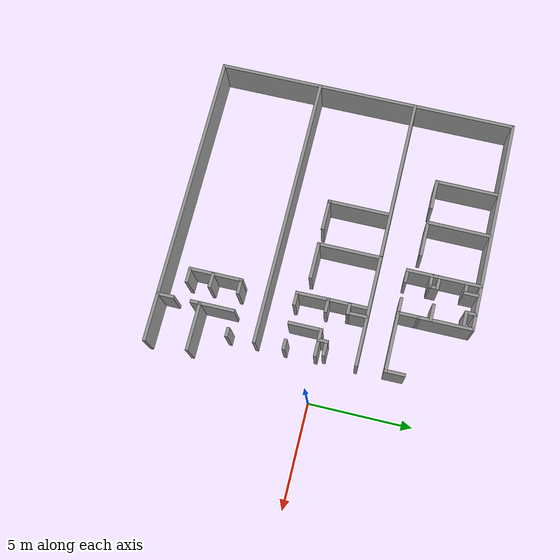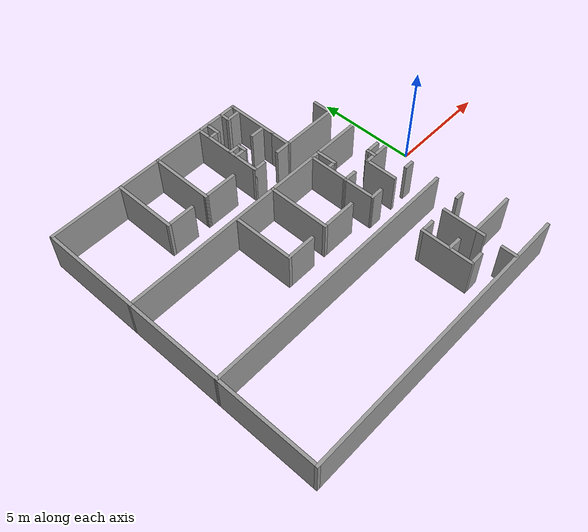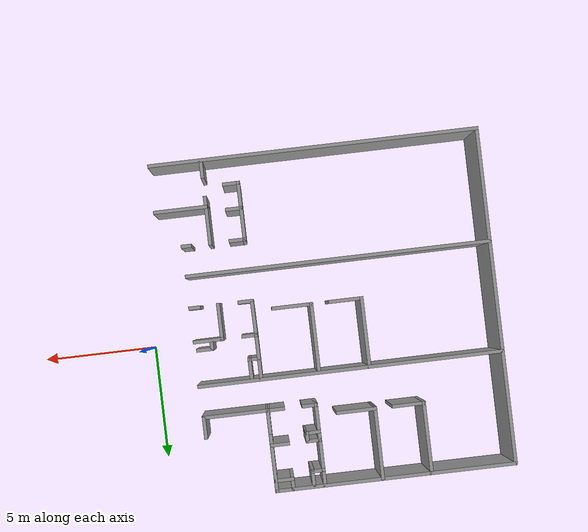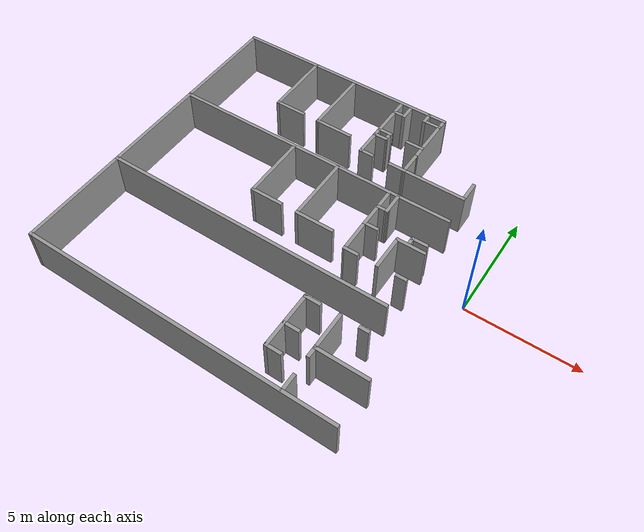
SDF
<sdf version="1.7">
 <model name="HQ">
  <pose>-0.041318 -0.56538 0 0 -0 0</pose>
  <link name="Wall_1">
   <collision name="Wall_1_Collision">
    <geometry><box><size>10.3981 0.15 2.0</size></box></geometry>
    <pose>0 0 1.25 0 -0 0</pose>
   </collision>
   <visual name="Wall_1_Visual">
    <pose>0 0 1.25 0 -0 0</pose>
    <geometry><box><size>10.3981 0.15 2.0</size></box></geometry>
    <material>
     <script><uri>file://media/materials/scripts/gazebo.material</uri><name>Gazebo/Grey</name></script>
     <ambient>1 1 1 1</ambient>
    </material>
    <meta><layer>0</layer></meta>
   </visual>
   <pose>-9.81185 7.21089 0 0 -0 0.000157</pose>
  </link>
  <link name="Wall_100">
   <collision name="Wall_100_Collision">
    <geometry><box><size>0.657 0.15 2.0</size></box></geometry>
    <pose>0 0 1.25 0 -0 0</pose>
   </collision>
   <visual name="Wall_100_Visual">
    <pose>0 0 1.25 0 -0 0</pose>
    <geometry><box><size>0.657 0.15 2.0</size></box></geometry>
    <material>
     <script><uri>file://media/materials/scripts/gazebo.material</uri><name>Gazebo/Grey</name></script>
     <ambient>1 1 1 1</ambient>
    </material>
    <meta><layer>0</layer></meta>
   </visual>
   <pose>-6.48912 5.25147 0 0 -0 3.14159</pose>
  </link>
  <link name="Wall_102">
   <collision name="Wall_102_Collision">
    <geometry><box><size>0.5 0.15 2.0</size></box></geometry>
    <pose>0 0 1.25 0 -0 0</pose>
   </collision>
   <visual name="Wall_102_Visual">
    <pose>0 0 1.25 0 -0 0</pose>
    <geometry><box><size>0.5 0.15 2.0</size></box></geometry>
    <material>
     <script><uri>file://media/materials/scripts/gazebo.material</uri><name>Gazebo/Grey</name></script>
     <ambient>1 1 1 1</ambient>
    </material>
    <meta><layer>0</layer></meta>
   </visual>
   <pose>-6.23562 5.07647 0 0 -0 -1.5708</pose>
  </link>
  <link name="Wall_103">
   <collision name="Wall_103_Collision">
    <geometry><box><size>0.668524 0.15 2.0</size></box></geometry>
    <pose>0 0 1.25 0 -0 0</pose>
   </collision>
   <visual name="Wall_103_Visual">
    <pose>0 0 1.25 0 -0 0</pose>
    <geometry><box><size>0.668524 0.15 2.0</size></box></geometry>
    <material>
     <script><uri>file://media/materials/scripts/gazebo.material</uri><name>Gazebo/Grey</name></script>
     <ambient>1 1 1 1</ambient>
    </material>
    <meta><layer>0</layer></meta>
   </visual>
   <pose>-6.49487 4.89822 0 0 -0 -3.12906</pose>
  </link>
  <link name="Wall_105">
   <collision name="Wall_105_Collision">
    <geometry><box><size>0.61 0.15 2.0</size></box></geometry>
    <pose>0 0 1.25 0 -0 0</pose>
   </collision>
   <visual name="Wall_105_Visual">
    <pose>0 0 1.25 0 -0 0</pose>
    <geometry><box><size>0.61 0.15 2.0</size></box></geometry>
    <material>
     <script><uri>file://media/materials/scripts/gazebo.material</uri><name>Gazebo/Grey</name></script>
     <ambient>1 1 1 1</ambient>
    </material>
    <meta><layer>0</layer></meta>
   </visual>
   <pose>-6.52412 6.55097 0 0 -0 0</pose>
  </link>
  <link name="Wall_106">
   <collision name="Wall_106_Collision">
    <geometry><box><size>0.725115 0.15 2.0</size></box></geometry>
    <pose>0 0 1.25 0 -0 0</pose>
   </collision>
   <visual name="Wall_106_Visual">
    <pose>0 0 1.25 0 -0 0</pose>
    <geometry><box><size>0.725115 0.15 2.0</size></box></geometry>
    <material>
     <script><uri>file://media/materials/scripts/gazebo.material</uri><name>Gazebo/Grey</name></script>
     <ambient>1 1 1 1</ambient>
    </material>
    <meta><layer>0</layer></meta>
   </visual>
   <pose>-6.29412 6.83847 0 0 -0 1.5708</pose>
  </link>
  <link name="Wall_108">
   <collision name="Wall_108_Collision">
    <geometry><box><size>3.14002 0.15 2.0</size></box></geometry>
    <pose>0 0 1.25 0 -0 0</pose>
   </collision>
   <visual name="Wall_108_Visual">
    <pose>0 0 1.25 0 -0 0</pose>
    <geometry><box><size>3.14002 0.15 2.0</size></box></geometry>
    <material>
     <script><uri>file://media/materials/scripts/gazebo.material</uri><name>Gazebo/Grey</name></script>
     <ambient>1 1 1 1</ambient>
    </material>
    <meta><layer>0</layer></meta>
   </visual>
   <pose>-9.25537 5.68847 0 0 -0 -1.57464</pose>
  </link>
  <link name="Wall_109">
   <collision name="Wall_109_Collision">
    <geometry><box><size>1.75 0.15 2.0</size></box></geometry>
    <pose>0 0 1.25 0 -0 0</pose>
   </collision>
   <visual name="Wall_109_Visual">
    <pose>0 0 1.25 0 -0 0</pose>
    <geometry><box><size>1.75 0.15 2.0</size></box></geometry>
    <material>
     <script><uri>file://media/materials/scripts/gazebo.material</uri><name>Gazebo/Grey</name></script>
     <ambient>1 1 1 1</ambient>
    </material>
    <meta><layer>0</layer></meta>
   </visual>
   <pose>-8.46112 4.19347 0 0 -0 0</pose>
  </link>
  <link name="Wall_113">
   <collision name="Wall_113_Collision">
    <geometry><box><size>1.43805 0.15 2.0</size></box></geometry>
    <pose>0 0 1.25 0 -0 0</pose>
   </collision>
   <visual name="Wall_113_Visual">
    <pose>0 0 1.25 0 -0 0</pose>
    <geometry><box><size>1.43805 0.15 2.0</size></box></geometry>
    <material>
     <script><uri>file://media/materials/scripts/gazebo.material</uri><name>Gazebo/Grey</name></script>
     <ambient>1 1 1 1</ambient>
    </material>
    <meta><layer>0</layer></meta>
   </visual>
   <pose>-10.7101 4.19347 0 0 -0 3.14159</pose>
  </link>
  <link name="Wall_114">
   <collision name="Wall_114_Collision">
    <geometry><box><size>3.1515 0.15 2.0</size></box></geometry>
    <pose>0 0 1.25 0 -0 0</pose>
   </collision>
   <visual name="Wall_114_Visual">
    <pose>0 0 1.25 0 -0 0</pose>
    <geometry><box><size>3.1515 0.15 2.0</size></box></geometry>
    <material>
     <script><uri>file://media/materials/scripts/gazebo.material</uri><name>Gazebo/Grey</name></script>
     <ambient>1 1 1 1</ambient>
    </material>
    <meta><layer>0</layer></meta>
   </visual>
   <pose>-11.3541 5.69422 0 0 -0 1.5708</pose>
  </link>
  <link name="Wall_122">
   <collision name="Wall_122_Collision">
    <geometry><box><size>2.33526 0.15 2.0</size></box></geometry>
    <pose>0 0 1.25 0 -0 0</pose>
   </collision>
   <visual name="Wall_122_Visual">
    <pose>0 0 1.25 0 -0 0</pose>
    <geometry><box><size>2.33526 0.15 2.0</size></box></geometry>
    <material>
     <script><uri>file://media/materials/scripts/gazebo.material</uri><name>Gazebo/Grey</name></script>
     <ambient>1 1 1 1</ambient>
    </material>
    <meta><layer>0</layer></meta>
   </visual>
   <pose>-1.97205 -5.21705 0 0 -0 3.14159</pose>
  </link>
  <link name="Wall_126">
   <collision name="Wall_126_Collision">
    <geometry><box><size>1.73034 0.15 2.0</size></box></geometry>
    <pose>0 0 1.25 0 -0 0</pose>
   </collision>
   <visual name="Wall_126_Visual">
    <pose>0 0 1.25 0 -0 0</pose>
    <geometry><box><size>1.73034 0.15 2.0</size></box></geometry>
    <material>
     <script><uri>file://media/materials/scripts/gazebo.material</uri><name>Gazebo/Grey</name></script>
     <ambient>1 1 1 1</ambient>
    </material>
    <meta><layer>0</layer></meta>
   </visual>
   <pose>-3.06468 -4.42688 0 0 -0 -1.5708</pose>
  </link>
  <link name="Wall_128">
   <collision name="Wall_128_Collision">
    <geometry><box><size>0.444896 0.15 2.0</size></box></geometry>
    <pose>0 0 1.25 0 -0 0</pose>
   </collision>
   <visual name="Wall_128_Visual">
    <pose>0 0 1.25 0 -0 0</pose>
    <geometry><box><size>0.444896 0.15 2.0</size></box></geometry>
    <material>
     <script><uri>file://media/materials/scripts/gazebo.material</uri><name>Gazebo/Grey</name></script>
     <ambient>1 1 1 1</ambient>
    </material>
    <meta><layer>0</layer></meta>
   </visual>
   <pose>-2.03254 -3.63671 0 0 -0 3.14159</pose>
  </link>
  <link name="Wall_130">
   <collision name="Wall_130_Collision">
    <geometry><box><size>0.535707 0.15 2.0</size></box></geometry>
    <pose>0 0 1.25 0 -0 0</pose>
   </collision>
   <visual name="Wall_130_Visual">
    <pose>0 0 1.25 0 -0 0</pose>
    <geometry><box><size>0.535707 0.15 2.0</size></box></geometry>
    <material>
     <script><uri>file://media/materials/scripts/gazebo.material</uri><name>Gazebo/Grey</name></script>
     <ambient>1 1 1 1</ambient>
    </material>
    <meta><layer>0</layer></meta>
   </visual>
   <pose>-3.06468 -5.40986 0 0 -0 -1.5708</pose>
  </link>
  <link name="Wall_134">
   <collision name="Wall_134_Collision">
    <geometry><box><size>0.800328 0.15 2.0</size></box></geometry>
    <pose>0 0 1.25 0 -0 0</pose>
   </collision>
   <visual name="Wall_134_Visual">
    <pose>0 0 1.25 0 -0 0</pose>
    <geometry><box><size>0.800328 0.15 2.0</size></box></geometry>
    <material>
     <script><uri>file://media/materials/scripts/gazebo.material</uri><name>Gazebo/Grey</name></script>
     <ambient>1 1 1 1</ambient>
    </material>
    <meta><layer>0</layer></meta>
   </visual>
   <pose>-3.06468 -6.85032 0 0 -0 1.5708</pose>
  </link>
  <link name="Wall_237">
   <collision name="Wall_237_Collision">
    <geometry><box><size>0.584783 0.15 2.0</size></box></geometry>
    <pose>0 0 1.25 0 -0 0</pose>
   </collision>
   <visual name="Wall_237_Visual">
    <pose>0 0 1.25 0 -0 0</pose>
    <geometry><box><size>0.584783 0.15 2.0</size></box></geometry>
    <material>
     <script><uri>file://media/materials/scripts/gazebo.material</uri><name>Gazebo/Grey</name></script>
     <ambient>1 1 1 1</ambient>
    </material>
    <meta><layer>0</layer></meta>
   </visual>
   <pose>-5.40371 6.99084 0 0 -0 -1.5708</pose>
  </link>
  <link name="Wall_238">
   <collision name="Wall_238_Collision">
    <geometry><box><size>0.84587 0.15 2.0</size></box></geometry>
    <pose>0 0 1.25 0 -0 0</pose>
   </collision>
   <visual name="Wall_238_Visual">
    <pose>0 0 1.25 0 -0 0</pose>
    <geometry><box><size>0.84587 0.15 2.0</size></box></geometry>
    <material>
     <script><uri>file://media/materials/scripts/gazebo.material</uri><name>Gazebo/Grey</name></script>
     <ambient>1 1 1 1</ambient>
    </material>
    <meta><layer>0</layer></meta>
   </visual>
   <pose>-5.05589 6.77345 0 0 -0 0</pose>
  </link>
  <link name="Wall_240">
   <collision name="Wall_240_Collision">
    <geometry><box><size>0.490265 0.15 2.0</size></box></geometry>
    <pose>0 0 1.25 0 -0 0</pose>
   </collision>
   <visual name="Wall_240_Visual">
    <pose>0 0 1.25 0 -0 0</pose>
    <geometry><box><size>0.490265 0.15 2.0</size></box></geometry>
    <material>
     <script><uri>file://media/materials/scripts/gazebo.material</uri><name>Gazebo/Grey</name></script>
     <ambient>1 1 1 1</ambient>
    </material>
    <meta><layer>0</layer></meta>
   </visual>
   <pose>-2.6327 0.685901 0 0 -0 1.5708</pose>
  </link>
  <link name="Wall_241">
   <collision name="Wall_241_Collision">
    <geometry><box><size>0.75 0.15 2.0</size></box></geometry>
    <pose>0 0 1.25 0 -0 0</pose>
   </collision>
   <visual name="Wall_241_Visual">
    <pose>0 0 1.25 0 -0 0</pose>
    <geometry><box><size>0.75 0.15 2.0</size></box></geometry>
    <material>
     <script><uri>file://media/materials/scripts/gazebo.material</uri><name>Gazebo/Grey</name></script>
     <ambient>1 1 1 1</ambient>
    </material>
    <meta><layer>0</layer></meta>
   </visual>
   <pose>-2.3327 0.856033 0 0 -0 0</pose>
  </link>
  <link name="Wall_244">
   <collision name="Wall_244_Collision">
    <geometry><box><size>0.75 0.15 2.0</size></box></geometry>
    <pose>0 0 1.25 0 -0 0</pose>
   </collision>
   <visual name="Wall_244_Visual">
    <pose>0 0 1.25 0 -0 0</pose>
    <geometry><box><size>0.75 0.15 2.0</size></box></geometry>
    <material>
     <script><uri>file://media/materials/scripts/gazebo.material</uri><name>Gazebo/Grey</name></script>
     <ambient>1 1 1 1</ambient>
    </material>
    <meta><layer>0</layer></meta>
   </visual>
   <pose>-4.25062 -3.64086 0 0 -0 3.14159</pose>
  </link>
  <link name="Wall_247">
   <collision name="Wall_247_Collision">
    <geometry><box><size>2.58803 0.15 2.0</size></box></geometry>
    <pose>0 0 1.25 0 -0 0</pose>
   </collision>
   <visual name="Wall_247_Visual">
    <pose>0 0 1.25 0 -0 0</pose>
    <geometry><box><size>2.58803 0.15 2.0</size></box></geometry>
    <material>
     <script><uri>file://media/materials/scripts/gazebo.material</uri><name>Gazebo/Grey</name></script>
     <ambient>1 1 1 1</ambient>
    </material>
    <meta><layer>0</layer></meta>
   </visual>
   <pose>-4.55062 -4.85987 0 0 -0 -1.5708</pose>
  </link>
  <link name="Wall_251">
   <collision name="Wall_251_Collision">
    <geometry><box><size>0.75 0.15 2.0</size></box></geometry>
    <pose>0 0 1.25 0 -0 0</pose>
   </collision>
   <visual name="Wall_251_Visual">
    <pose>0 0 1.25 0 -0 0</pose>
    <geometry><box><size>0.75 0.15 2.0</size></box></geometry>
    <material>
     <script><uri>file://media/materials/scripts/gazebo.material</uri><name>Gazebo/Grey</name></script>
     <ambient>1 1 1 1</ambient>
    </material>
    <meta><layer>0</layer></meta>
   </visual>
   <pose>-4.25062 -6.07887 0 0 -0 0</pose>
  </link>
  <link name="Wall_258">
   <collision name="Wall_258_Collision">
    <geometry><box><size>0.727018 0.15 2.0</size></box></geometry>
    <pose>0 0 1.25 0 -0 0</pose>
   </collision>
   <visual name="Wall_258_Visual">
    <pose>0 0 1.25 0 -0 0</pose>
    <geometry><box><size>0.727018 0.15 2.0</size></box></geometry>
    <material>
     <script><uri>file://media/materials/scripts/gazebo.material</uri><name>Gazebo/Grey</name></script>
     <ambient>1 1 1 1</ambient>
    </material>
    <meta><layer>0</layer></meta>
   </visual>
   <pose>-4.23912 -4.98862 0 0 -0 3.13379</pose>
  </link>
  <link name="Wall_3">
   <collision name="Wall_3_Collision">
    <geometry><box><size>2.66886 0.15 2.0</size></box></geometry>
    <pose>0 0 1.25 0 -0 0</pose>
   </collision>
   <visual name="Wall_3_Visual">
    <pose>0 0 1.25 0 -0 0</pose>
    <geometry><box><size>2.66886 0.15 2.0</size></box></geometry>
    <material>
     <script><uri>file://media/materials/scripts/gazebo.material</uri><name>Gazebo/Grey</name></script>
     <ambient>1 1 1 1</ambient>
    </material>
    <meta><layer>0</layer></meta>
   </visual>
   <pose>-4.68613 5.95229 0 0 -0 -1.56947</pose>
  </link>
  <link name="Wall_31">
   <collision name="Wall_31_Collision">
    <geometry><box><size>14.25 0.15 2.0</size></box></geometry>
    <pose>0 0 1.25 0 -0 0</pose>
   </collision>
   <visual name="Wall_31_Visual">
    <pose>0 0 1.25 0 -0 0</pose>
    <geometry><box><size>14.25 0.15 2.0</size></box></geometry>
    <material>
     <script><uri>file://media/materials/scripts/gazebo.material</uri><name>Gazebo/Grey</name></script>
     <ambient>1 1 1 1</ambient>
    </material>
    <meta><layer>0</layer></meta>
   </visual>
   <pose>-7.9114 -7.22017 0 0 -0 3.14159</pose>
  </link>
  <link name="Wall_33">
   <collision name="Wall_33_Collision">
    <geometry><box><size>5.00744 0.15 2.0</size></box></geometry>
    <pose>0 0 1.25 0 -0 0</pose>
   </collision>
   <visual name="Wall_33_Visual">
    <pose>0 0 1.25 0 -0 0</pose>
    <geometry><box><size>5.00744 0.15 2.0</size></box></geometry>
    <material>
     <script><uri>file://media/materials/scripts/gazebo.material</uri><name>Gazebo/Grey</name></script>
     <ambient>1 1 1 1</ambient>
    </material>
    <meta><layer>0</layer></meta>
   </visual>
   <pose>-14.9607 -4.79146 0 0 -0 1.57052</pose>
  </link>
  <link name="Wall_34">
   <collision name="Wall_34_Collision">
    <geometry><box><size>13.1976 0.15 2.0</size></box></geometry>
    <pose>0 0 1.25 0 -0 0</pose>
   </collision>
   <visual name="Wall_34_Visual">
    <pose>0 0 1.25 0 -0 0</pose>
    <geometry><box><size>13.1976 0.15 2.0</size></box></geometry>
    <material>
     <script><uri>file://media/materials/scripts/gazebo.material</uri><name>Gazebo/Grey</name></script>
     <ambient>1 1 1 1</ambient>
    </material>
    <meta><layer>0</layer></meta>
   </visual>
   <pose>-8.43629 -2.35401 0 0 -0 0.00134</pose>
  </link>
  <link name="Wall_36">
   <collision name="Wall_36_Collision">
    <geometry><box><size>4.88994 0.15 2.0</size></box></geometry>
    <pose>0 0 1.25 0 -0 0</pose>
   </collision>
   <visual name="Wall_36_Visual">
    <pose>0 0 1.25 0 -0 0</pose>
    <geometry><box><size>4.88994 0.15 2.0</size></box></geometry>
    <material>
     <script><uri>file://media/materials/scripts/gazebo.material</uri><name>Gazebo/Grey</name></script>
     <ambient>1 1 1 1</ambient>
    </material>
    <meta><layer>0</layer></meta>
   </visual>
   <pose>-14.9601 0.007151 0 0 -0 1.5708</pose>
  </link>
  <link name="Wall_38">
   <collision name="Wall_38_Collision">
    <geometry><box><size>4.97729 0.15 2.0</size></box></geometry>
    <pose>0 0 1.25 0 -0 0</pose>
   </collision>
   <visual name="Wall_38_Visual">
    <pose>0 0 1.25 0 -0 0</pose>
    <geometry><box><size>4.97729 0.15 2.0</size></box></geometry>
    <material>
     <script><uri>file://media/materials/scripts/gazebo.material</uri><name>Gazebo/Grey</name></script>
     <ambient>1 1 1 1</ambient>
    </material>
    <meta><layer>0</layer></meta>
   </visual>
   <pose>-14.9601 4.79068 0 0 -0 1.5708</pose>
  </link>
  <link name="Wall_40">
   <collision name="Wall_40_Collision">
    <geometry><box><size>13.208 0.15 2.0</size></box></geometry>
    <pose>0 0 1.25 0 -0 0</pose>
   </collision>
   <visual name="Wall_40_Visual">
    <pose>0 0 1.25 0 -0 0</pose>
    <geometry><box><size>13.208 0.15 2.0</size></box></geometry>
    <material>
     <script><uri>file://media/materials/scripts/gazebo.material</uri><name>Gazebo/Grey</name></script>
     <ambient>1 1 1 1</ambient>
    </material>
    <meta><layer>0</layer></meta>
   </visual>
   <pose>-8.43119 2.39 0 0 -0 0.001983</pose>
  </link>
  <link name="Wall_47">
   <collision name="Wall_47_Collision">
    <geometry><box><size>0.5 0.15 2.0</size></box></geometry>
    <pose>0 0 1.25 0 -0 0</pose>
   </collision>
   <visual name="Wall_47_Visual">
    <pose>0 0 1.25 0 -0 0</pose>
    <geometry><box><size>0.5 0.15 2.0</size></box></geometry>
    <material>
     <script><uri>file://media/materials/scripts/gazebo.material</uri><name>Gazebo/Grey</name></script>
     <ambient>1 1 1 1</ambient>
    </material>
    <meta><layer>0</layer></meta>
   </visual>
   <pose>-2.0773 -0.973145 0 0 -0 3.14159</pose>
  </link>
  <link name="Wall_49">
   <collision name="Wall_49_Collision">
    <geometry><box><size>1.62826 0.15 2.0</size></box></geometry>
    <pose>0 0 1.25 0 -0 0</pose>
   </collision>
   <visual name="Wall_49_Visual">
    <pose>0 0 1.25 0 -0 0</pose>
    <geometry><box><size>1.62826 0.15 2.0</size></box></geometry>
    <material>
     <script><uri>file://media/materials/scripts/gazebo.material</uri><name>Gazebo/Grey</name></script>
     <ambient>1 1 1 1</ambient>
    </material>
    <meta><layer>0</layer></meta>
   </visual>
   <pose>-3.09928 -0.248315 0 0 -0 1.5708</pose>
  </link>
  <link name="Wall_50">
   <collision name="Wall_50_Collision">
    <geometry><box><size>1.32391 0.15 2.0</size></box></geometry>
    <pose>0 0 1.25 0 -0 0</pose>
   </collision>
   <visual name="Wall_50_Visual">
    <pose>0 0 1.25 0 -0 0</pose>
    <geometry><box><size>1.32391 0.15 2.0</size></box></geometry>
    <material>
     <script><uri>file://media/materials/scripts/gazebo.material</uri><name>Gazebo/Grey</name></script>
     <ambient>1 1 1 1</ambient>
    </material>
    <meta><layer>0</layer></meta>
   </visual>
   <pose>-2.51232 0.490815 0 0 -0 0</pose>
  </link>
  <link name="Wall_55">
   <collision name="Wall_55_Collision">
    <geometry><box><size>1.62836 0.15 2.0</size></box></geometry>
    <pose>0 0 1.25 0 -0 0</pose>
   </collision>
   <visual name="Wall_55_Visual">
    <pose>0 0 1.25 0 -0 0</pose>
    <geometry><box><size>1.62836 0.15 2.0</size></box></geometry>
    <material>
     <script><uri>file://media/materials/scripts/gazebo.material</uri><name>Gazebo/Grey</name></script>
     <ambient>1 1 1 1</ambient>
    </material>
    <meta><layer>0</layer></meta>
   </visual>
   <pose>-4.56015 -0.248315 0 0 -0 1.58256</pose>
  </link>
  <link name="Wall_56">
   <collision name="Wall_56_Collision">
    <geometry><box><size>0.697826 0.15 2.0</size></box></geometry>
    <pose>0 0 1.25 0 -0 0</pose>
   </collision>
   <visual name="Wall_56_Visual">
    <pose>0 0 1.25 0 -0 0</pose>
    <geometry><box><size>0.697826 0.15 2.0</size></box></geometry>
    <material>
     <script><uri>file://media/materials/scripts/gazebo.material</uri><name>Gazebo/Grey</name></script>
     <ambient>1 1 1 1</ambient>
    </material>
    <meta><layer>0</layer></meta>
   </visual>
   <pose>-4.29493 0.48212 0 0 -0 0</pose>
  </link>
  <link name="Wall_60">
   <collision name="Wall_60_Collision">
    <geometry><box><size>0.680506 0.15 2.0</size></box></geometry>
    <pose>0 0 1.25 0 -0 0</pose>
   </collision>
   <visual name="Wall_60_Visual">
    <pose>0 0 1.25 0 -0 0</pose>
    <geometry><box><size>0.680506 0.15 2.0</size></box></geometry>
    <material>
     <script><uri>file://media/materials/scripts/gazebo.material</uri><name>Gazebo/Grey</name></script>
     <ambient>1 1 1 1</ambient>
    </material>
    <meta><layer>0</layer></meta>
   </visual>
   <pose>-4.28623 -0.987445 0 0 -0 0</pose>
  </link>
  <link name="Wall_62">
   <collision name="Wall_62_Collision">
    <geometry><box><size>2 0.15 2.0</size></box></geometry>
    <pose>0 0 1.25 0 -0 0</pose>
   </collision>
   <visual name="Wall_62_Visual">
    <pose>0 0 1.25 0 -0 0</pose>
    <geometry><box><size>2 0.15 2.0</size></box></geometry>
    <material>
     <script><uri>file://media/materials/scripts/gazebo.material</uri><name>Gazebo/Grey</name></script>
     <ambient>1 1 1 1</ambient>
    </material>
    <meta><layer>0</layer></meta>
   </visual>
   <pose>-4.56884 1.40712 0 0 -0 1.5708</pose>
  </link>
  <link name="Wall_65">
   <collision name="Wall_65_Collision">
    <geometry><box><size>1.04582 0.15 2.0</size></box></geometry>
    <pose>0 0 1.25 0 -0 0</pose>
   </collision>
   <visual name="Wall_65_Visual">
    <pose>0 0 1.25 0 -0 0</pose>
    <geometry><box><size>1.04582 0.15 2.0</size></box></geometry>
    <material>
     <script><uri>file://media/materials/scripts/gazebo.material</uri><name>Gazebo/Grey</name></script>
     <ambient>1 1 1 1</ambient>
    </material>
    <meta><layer>0</layer></meta>
   </visual>
   <pose>-4.16449 1.93864 0 0 -0 -1.56109</pose>
  </link>
  <link name="Wall_66">
   <collision name="Wall_66_Collision">
    <geometry><box><size>0.532609 0.15 2.0</size></box></geometry>
    <pose>0 0 1.25 0 -0 0</pose>
   </collision>
   <visual name="Wall_66_Visual">
    <pose>0 0 1.25 0 -0 0</pose>
    <geometry><box><size>0.532609 0.15 2.0</size></box></geometry>
    <material>
     <script><uri>file://media/materials/scripts/gazebo.material</uri><name>Gazebo/Grey</name></script>
     <ambient>1 1 1 1</ambient>
    </material>
    <meta><layer>0</layer></meta>
   </visual>
   <pose>-4.35145 1.49082 0 0 -0 3.14159</pose>
  </link>
  <link name="Wall_68">
   <collision name="Wall_68_Collision">
    <geometry><box><size>3.09783 0.15 2.0</size></box></geometry>
    <pose>0 0 1.25 0 -0 0</pose>
   </collision>
   <visual name="Wall_68_Visual">
    <pose>0 0 1.25 0 -0 0</pose>
    <geometry><box><size>3.09783 0.15 2.0</size></box></geometry>
    <material>
     <script><uri>file://media/materials/scripts/gazebo.material</uri><name>Gazebo/Grey</name></script>
     <ambient>1 1 1 1</ambient>
    </material>
    <meta><layer>0</layer></meta>
   </visual>
   <pose>-7.06449 0.912555 0 0 -0 -1.5708</pose>
  </link>
  <link name="Wall_69">
   <collision name="Wall_69_Collision">
    <geometry><box><size>1.77611 0.15 2.0</size></box></geometry>
    <pose>0 0 1.25 0 -0 0</pose>
   </collision>
   <visual name="Wall_69_Visual">
    <pose>0 0 1.25 0 -0 0</pose>
    <geometry><box><size>1.77611 0.15 2.0</size></box></geometry>
    <material>
     <script><uri>file://media/materials/scripts/gazebo.material</uri><name>Gazebo/Grey</name></script>
     <ambient>1 1 1 1</ambient>
    </material>
    <meta><layer>0</layer></meta>
   </visual>
   <pose>-6.25145 -0.561358 0 0 -0 0</pose>
  </link>
  <link name="Wall_71">
   <collision name="Wall_71_Collision">
    <geometry><box><size>3.08045 0.15 2.0</size></box></geometry>
    <pose>0 0 1.25 0 -0 0</pose>
   </collision>
   <visual name="Wall_71_Visual">
    <pose>0 0 1.25 0 -0 0</pose>
    <geometry><box><size>3.08045 0.15 2.0</size></box></geometry>
    <material>
     <script><uri>file://media/materials/scripts/gazebo.material</uri><name>Gazebo/Grey</name></script>
     <ambient>1 1 1 1</ambient>
    </material>
    <meta><layer>0</layer></meta>
   </visual>
   <pose>-9.22971 0.903859 0 0 -0 -1.5708</pose>
  </link>
  <link name="Wall_73">
   <collision name="Wall_73_Collision">
    <geometry><box><size>1.5 0.15 2.0</size></box></geometry>
    <pose>0 0 1.25 0 -0 0</pose>
   </collision>
   <visual name="Wall_73_Visual">
    <pose>0 0 1.25 0 -0 0</pose>
    <geometry><box><size>1.5 0.15 2.0</size></box></geometry>
    <material>
     <script><uri>file://media/materials/scripts/gazebo.material</uri><name>Gazebo/Grey</name></script>
     <ambient>1 1 1 1</ambient>
    </material>
    <meta><layer>0</layer></meta>
   </visual>
   <pose>-8.55471 -0.561358 0 0 -0 0</pose>
  </link>
  <link name="Wall_79">
   <collision name="Wall_79_Collision">
    <geometry><box><size>2.8985 0.15 2.0</size></box></geometry>
    <pose>0 0 1.25 0 -0 0</pose>
   </collision>
   <visual name="Wall_79_Visual">
    <pose>0 0 1.25 0 -0 0</pose>
    <geometry><box><size>2.8985 0.15 2.0</size></box></geometry>
    <material>
     <script><uri>file://media/materials/scripts/gazebo.material</uri><name>Gazebo/Grey</name></script>
     <ambient>1 1 1 1</ambient>
    </material>
    <meta><layer>0</layer></meta>
   </visual>
   <pose>-3.30987 3.74497 0 0 -0 3.14159</pose>
  </link>
  <link name="Wall_81">
   <collision name="Wall_81_Collision">
    <geometry><box><size>1.0979 0.15 2.0</size></box></geometry>
    <pose>0 0 1.25 0 -0 0</pose>
   </collision>
   <visual name="Wall_81_Visual">
    <pose>0 0 1.25 0 -0 0</pose>
    <geometry><box><size>1.0979 0.15 2.0</size></box></geometry>
    <material>
     <script><uri>file://media/materials/scripts/gazebo.material</uri><name>Gazebo/Grey</name></script>
     <ambient>1 1 1 1</ambient>
    </material>
    <meta><layer>0</layer></meta>
   </visual>
   <pose>-4.68429 4.21892 0 0 -0 1.57115</pose>
  </link>
  <link name="Wall_83">
   <collision name="Wall_83_Collision">
    <geometry><box><size>1 0.15 2.0</size></box></geometry>
    <pose>0 0 1.25 0 -0 0</pose>
   </collision>
   <visual name="Wall_83_Visual">
    <pose>0 0 1.25 0 -0 0</pose>
    <geometry><box><size>1 0.15 2.0</size></box></geometry>
    <material>
     <script><uri>file://media/materials/scripts/gazebo.material</uri><name>Gazebo/Grey</name></script>
     <ambient>1 1 1 1</ambient>
    </material>
    <meta><layer>0</layer></meta>
   </visual>
   <pose>-1.93562 4.16997 0 0 -0 1.5708</pose>
  </link>
  <link name="Wall_87">
   <collision name="Wall_87_Collision">
    <geometry><box><size>3.577 0.15 2.0</size></box></geometry>
    <pose>0 0 1.25 0 -0 0</pose>
   </collision>
   <visual name="Wall_87_Visual">
    <pose>0 0 1.25 0 -0 0</pose>
    <geometry><box><size>3.577 0.15 2.0</size></box></geometry>
    <material>
     <script><uri>file://media/materials/scripts/gazebo.material</uri><name>Gazebo/Grey</name></script>
     <ambient>1 1 1 1</ambient>
    </material>
    <meta><layer>0</layer></meta>
   </visual>
   <pose>-6.76562 5.45847 0 0 -0 1.5708</pose>
  </link>
  <link name="Wall_89">
   <collision name="Wall_89_Collision">
    <geometry><box><size>0.679125 0.15 2.0</size></box></geometry>
    <pose>0 0 1.25 0 -0 0</pose>
   </collision>
   <visual name="Wall_89_Visual">
    <pose>0 0 1.25 0 -0 0</pose>
    <geometry><box><size>0.679125 0.15 2.0</size></box></geometry>
    <material>
     <script><uri>file://media/materials/scripts/gazebo.material</uri><name>Gazebo/Grey</name></script>
     <ambient>1 1 1 1</ambient>
    </material>
    <meta><layer>0</layer></meta>
   </visual>
   <pose>-6.50112 3.74497 0 0 -0 0</pose>
  </link>
  <link name="Wall_91">
   <collision name="Wall_91_Collision">
    <geometry><box><size>0.817 0.15 2.0</size></box></geometry>
    <pose>0 0 1.25 0 -0 0</pose>
   </collision>
   <visual name="Wall_91_Visual">
    <pose>0 0 1.25 0 -0 0</pose>
    <geometry><box><size>0.817 0.15 2.0</size></box></geometry>
    <material>
     <script><uri>file://media/materials/scripts/gazebo.material</uri><name>Gazebo/Grey</name></script>
     <ambient>1 1 1 1</ambient>
    </material>
    <meta><layer>0</layer></meta>
   </visual>
   <pose>-5.01762 3.74497 0 0 -0 3.14159</pose>
  </link>
  <link name="Wall_94">
   <collision name="Wall_94_Collision">
    <geometry><box><size>0.840096 0.15 2.0</size></box></geometry>
    <pose>0 0 1.25 0 -0 0</pose>
   </collision>
   <visual name="Wall_94_Visual">
    <pose>0 0 1.25 0 -0 0</pose>
    <geometry><box><size>0.840096 0.15 2.0</size></box></geometry>
    <material>
     <script><uri>file://media/materials/scripts/gazebo.material</uri><name>Gazebo/Grey</name></script>
     <ambient>1 1 1 1</ambient>
    </material>
    <meta><layer>0</layer></meta>
   </visual>
   <pose>-5.04062 5.25147 0 0 -0 3.14159</pose>
  </link>
  <static>1</static>
 </model>
</sdf>
